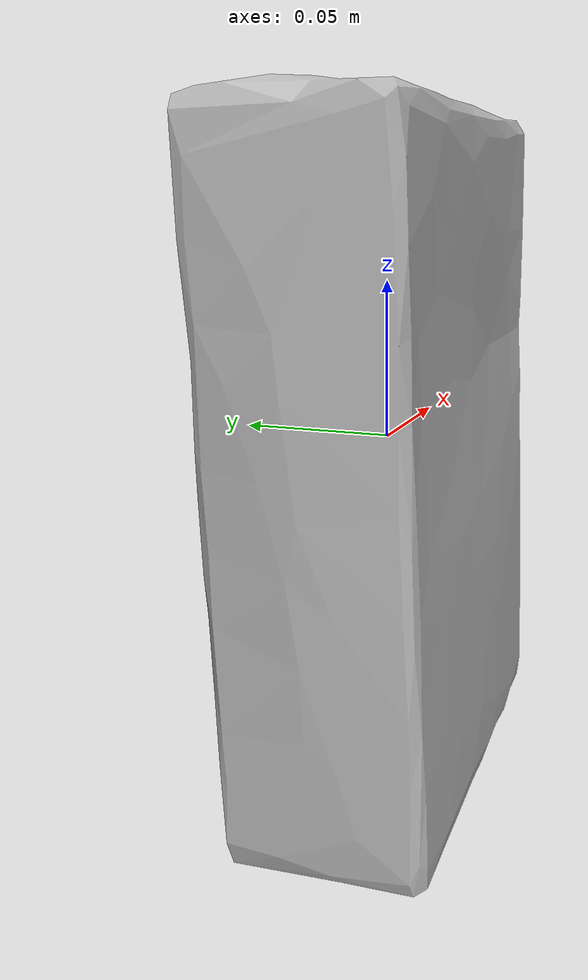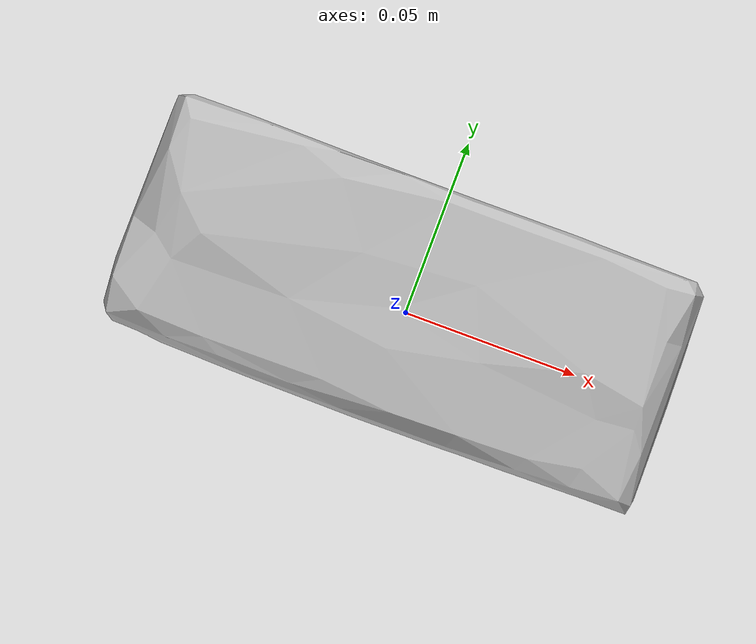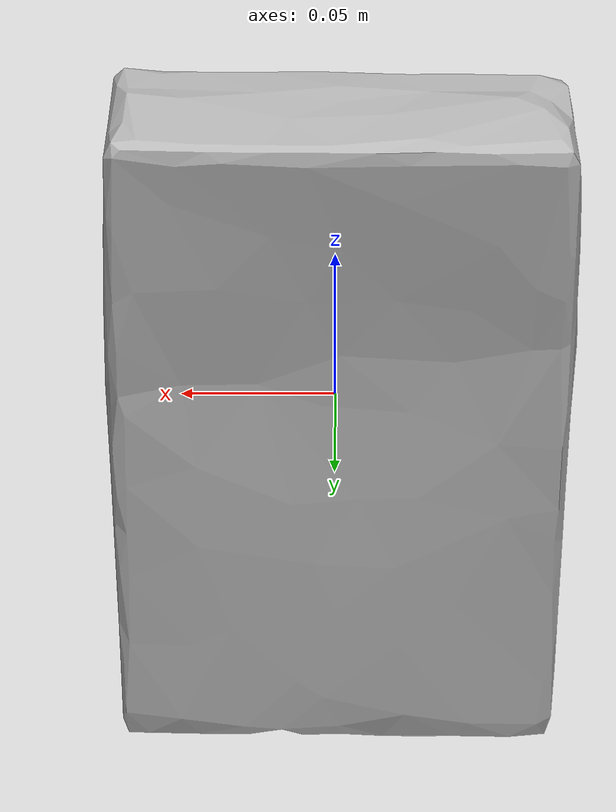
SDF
<?xml version="1.0" ?>
<sdf version="1.4">
  <model name="koelln_muesli_knusper_schoko_keks">
    <link name="koelln_muesli_knusper_schoko_keks_link">
      <inertial>
        <pose>0 0 0 0 0 0</pose>
        <mass>0.08</mass>
      </inertial>

      <visual name="koelln_muesli_knusper_schoko_keks_visual">
        <pose>0 0 0 0 0 0</pose>
        <material>
          <script>
            <uri>model://koelln_muesli_knusper_schoko_keks/materials/scripts</uri>
            <uri>model://koelln_muesli_knusper_schoko_keks/materials/textures</uri>
            <name>koelln_muesli_knusper_schoko_keks</name>
          </script>
        </material>
        <geometry>
          <mesh>
            <uri>model://koelln_muesli_knusper_schoko_keks/meshes/koelln_muesli_knusper_schoko_keks.dae</uri>
          </mesh>
        </geometry>
      </visual>

      <collision name="koelln_muesli_knusper_schoko_keks_collision">
        <pose>0 0 0 0 0 0</pose>
        <geometry>
          <mesh>
            <uri>model://koelln_muesli_knusper_schoko_keks/meshes/koelln_muesli_knusper_schoko_keks.dae</uri>
          </mesh>
        </geometry>
        <surface>
          <friction>
            <ode>
              <mu>0.8</mu>
              <mu2>0.8</mu2>
              <fdir1>0.0 0.0 0.0</fdir1>
              <slip1>0.01</slip1>
              <slip2>0.01</slip2>
            </ode>
          </friction>
        </surface>
      </collision>

    </link>
  </model>
</sdf>
